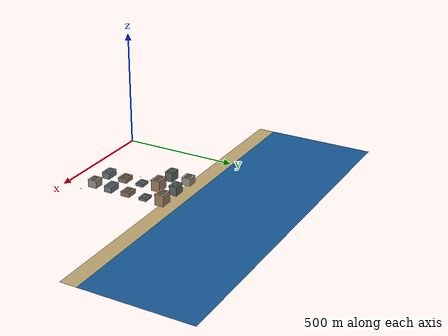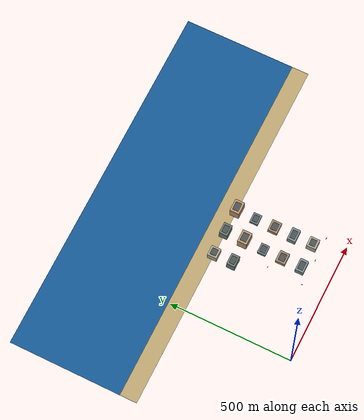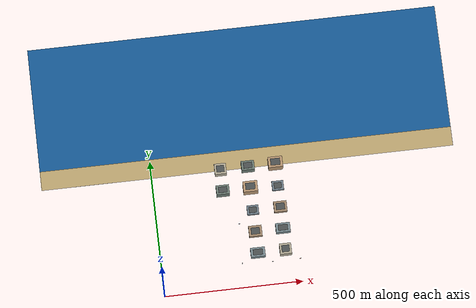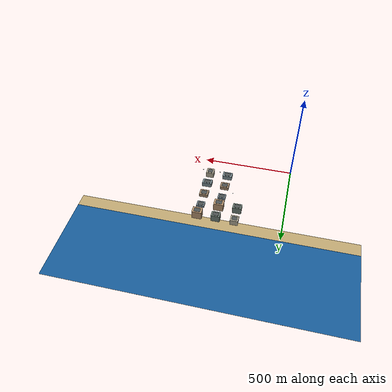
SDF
<sdf version="1.9">
 <world name="smart_city">
  <model name="chennai_block_062">
   <static>true</static>
   <pose>350 120 0 0 0 0</pose>
   <link name="building">
    <collision name="structure">
     <pose>0 0 13.0 0 0 0</pose>
     <geometry><box><size>52 34 26</size></box></geometry>
    </collision>
    <visual name="facade">
     <pose>0 0 13.0 0 0 0</pose>
     <geometry><box><size>52 34 26</size></box></geometry>
     <material><ambient>0.46 0.53 0.55 1</ambient><diffuse>0.46 0.53 0.55 1</diffuse></material>
    </visual>
    <visual name="roof">
     <pose>0 0 26.3 0 0 0</pose>
     <geometry><box><size>34.3 21.1 0.6</size></box></geometry>
     <material><ambient>0.29 0.31 0.31 1</ambient><diffuse>0.29 0.31 0.31 1</diffuse></material>
    </visual>
   </link>
  </model>
  <model name="chennai_block_063">
   <static>true</static>
   <pose>450 120 0 0 0 0</pose>
   <link name="building">
    <collision name="structure">
     <pose>0 0 16.5 0 0 0</pose>
     <geometry><box><size>42 39 33</size></box></geometry>
    </collision>
    <visual name="facade">
     <pose>0 0 16.5 0 0 0</pose>
     <geometry><box><size>42 39 33</size></box></geometry>
     <material><ambient>0.68 0.65 0.57 1</ambient><diffuse>0.68 0.65 0.57 1</diffuse></material>
    </visual>
    <visual name="roof">
     <pose>0 0 33.3 0 0 0</pose>
     <geometry><box><size>27.7 24.2 0.6</size></box></geometry>
     <material><ambient>0.29 0.31 0.31 1</ambient><diffuse>0.29 0.31 0.31 1</diffuse></material>
    </visual>
   </link>
  </model>
  <model name="chennai_block_073">
   <static>true</static>
   <pose>350 200 0 0 0 0</pose>
   <link name="building">
    <collision name="structure">
     <pose>0 0 9.5 0 0 0</pose>
     <geometry><box><size>47 39 19</size></box></geometry>
    </collision>
    <visual name="facade">
     <pose>0 0 9.5 0 0 0</pose>
     <geometry><box><size>47 39 19</size></box></geometry>
     <material><ambient>0.62 0.52 0.41 1</ambient><diffuse>0.62 0.52 0.41 1</diffuse></material>
    </visual>
    <visual name="roof">
     <pose>0 0 19.3 0 0 0</pose>
     <geometry><box><size>31.0 24.2 0.6</size></box></geometry>
     <material><ambient>0.29 0.31 0.31 1</ambient><diffuse>0.29 0.31 0.31 1</diffuse></material>
    </visual>
   </link>
  </model>
  <model name="chennai_block_074">
   <static>true</static>
   <pose>450 200 0 0 0 0</pose>
   <link name="building">
    <collision name="structure">
     <pose>0 0 13.0 0 0 0</pose>
     <geometry><box><size>52 34 26</size></box></geometry>
    </collision>
    <visual name="facade">
     <pose>0 0 13.0 0 0 0</pose>
     <geometry><box><size>52 34 26</size></box></geometry>
     <material><ambient>0.46 0.53 0.55 1</ambient><diffuse>0.46 0.53 0.55 1</diffuse></material>
    </visual>
    <visual name="roof">
     <pose>0 0 26.3 0 0 0</pose>
     <geometry><box><size>34.3 21.1 0.6</size></box></geometry>
     <material><ambient>0.29 0.31 0.31 1</ambient><diffuse>0.29 0.31 0.31 1</diffuse></material>
    </visual>
   </link>
  </model>
  <model name="chennai_block_084">
   <static>true</static>
   <pose>350 280 0 0 0 0</pose>
   <link name="building">
    <collision name="structure">
     <pose>0 0 6.0 0 0 0</pose>
     <geometry><box><size>42 34 12</size></box></geometry>
    </collision>
    <visual name="facade">
     <pose>0 0 6.0 0 0 0</pose>
     <geometry><box><size>42 34 12</size></box></geometry>
     <material><ambient>0.42 0.48 0.52 1</ambient><diffuse>0.42 0.48 0.52 1</diffuse></material>
    </visual>
    <visual name="roof">
     <pose>0 0 12.3 0 0 0</pose>
     <geometry><box><size>27.7 21.1 0.6</size></box></geometry>
     <material><ambient>0.29 0.31 0.31 1</ambient><diffuse>0.29 0.31 0.31 1</diffuse></material>
    </visual>
   </link>
  </model>
  <model name="chennai_block_085">
   <static>true</static>
   <pose>450 280 0 0 0 0</pose>
   <link name="building">
    <collision name="structure">
     <pose>0 0 9.5 0 0 0</pose>
     <geometry><box><size>47 39 19</size></box></geometry>
    </collision>
    <visual name="facade">
     <pose>0 0 9.5 0 0 0</pose>
     <geometry><box><size>47 39 19</size></box></geometry>
     <material><ambient>0.62 0.52 0.41 1</ambient><diffuse>0.62 0.52 0.41 1</diffuse></material>
    </visual>
    <visual name="roof">
     <pose>0 0 19.3 0 0 0</pose>
     <geometry><box><size>31.0 24.2 0.6</size></box></geometry>
     <material><ambient>0.29 0.31 0.31 1</ambient><diffuse>0.29 0.31 0.31 1</diffuse></material>
    </visual>
   </link>
  </model>
  <model name="chennai_block_094">
   <static>true</static>
   <pose>250 360 0 0 0 0</pose>
   <link name="building">
    <collision name="structure">
     <pose>0 0 20.0 0 0 0</pose>
     <geometry><box><size>47 34 40</size></box></geometry>
    </collision>
    <visual name="facade">
     <pose>0 0 20.0 0 0 0</pose>
     <geometry><box><size>47 34 40</size></box></geometry>
     <material><ambient>0.41 0.47 0.44 1</ambient><diffuse>0.41 0.47 0.44 1</diffuse></material>
    </visual>
    <visual name="roof">
     <pose>0 0 40.3 0 0 0</pose>
     <geometry><box><size>31.0 21.1 0.6</size></box></geometry>
     <material><ambient>0.29 0.31 0.31 1</ambient><diffuse>0.29 0.31 0.31 1</diffuse></material>
    </visual>
   </link>
  </model>
  <model name="chennai_block_095">
   <static>true</static>
   <pose>350 360 0 0 0 0</pose>
   <link name="building">
    <collision name="structure">
     <pose>0 0 23.5 0 0 0</pose>
     <geometry><box><size>52 39 47</size></box></geometry>
    </collision>
    <visual name="facade">
     <pose>0 0 23.5 0 0 0</pose>
     <geometry><box><size>52 39 47</size></box></geometry>
     <material><ambient>0.70 0.57 0.43 1</ambient><diffuse>0.70 0.57 0.43 1</diffuse></material>
    </visual>
    <visual name="roof">
     <pose>0 0 47.3 0 0 0</pose>
     <geometry><box><size>34.3 24.2 0.6</size></box></geometry>
     <material><ambient>0.29 0.31 0.31 1</ambient><diffuse>0.29 0.31 0.31 1</diffuse></material>
    </visual>
   </link>
  </model>
  <model name="chennai_block_096">
   <static>true</static>
   <pose>450 360 0 0 0 0</pose>
   <link name="building">
    <collision name="structure">
     <pose>0 0 6.0 0 0 0</pose>
     <geometry><box><size>42 34 12</size></box></geometry>
    </collision>
    <visual name="facade">
     <pose>0 0 6.0 0 0 0</pose>
     <geometry><box><size>42 34 12</size></box></geometry>
     <material><ambient>0.42 0.48 0.52 1</ambient><diffuse>0.42 0.48 0.52 1</diffuse></material>
    </visual>
    <visual name="roof">
     <pose>0 0 12.3 0 0 0</pose>
     <geometry><box><size>27.7 21.1 0.6</size></box></geometry>
     <material><ambient>0.29 0.31 0.31 1</ambient><diffuse>0.29 0.31 0.31 1</diffuse></material>
    </visual>
   </link>
  </model>
  <model name="chennai_block_105">
   <static>true</static>
   <pose>250 440 0 0 0 0</pose>
   <link name="building">
    <collision name="structure">
     <pose>0 0 16.5 0 0 0</pose>
     <geometry><box><size>42 39 33</size></box></geometry>
    </collision>
    <visual name="facade">
     <pose>0 0 16.5 0 0 0</pose>
     <geometry><box><size>42 39 33</size></box></geometry>
     <material><ambient>0.68 0.65 0.57 1</ambient><diffuse>0.68 0.65 0.57 1</diffuse></material>
    </visual>
    <visual name="roof">
     <pose>0 0 33.3 0 0 0</pose>
     <geometry><box><size>27.7 24.2 0.6</size></box></geometry>
     <material><ambient>0.29 0.31 0.31 1</ambient><diffuse>0.29 0.31 0.31 1</diffuse></material>
    </visual>
   </link>
  </model>
  <model name="chennai_block_106">
   <static>true</static>
   <pose>350 440 0 0 0 0</pose>
   <link name="building">
    <collision name="structure">
     <pose>0 0 20.0 0 0 0</pose>
     <geometry><box><size>47 34 40</size></box></geometry>
    </collision>
    <visual name="facade">
     <pose>0 0 20.0 0 0 0</pose>
     <geometry><box><size>47 34 40</size></box></geometry>
     <material><ambient>0.41 0.47 0.44 1</ambient><diffuse>0.41 0.47 0.44 1</diffuse></material>
    </visual>
    <visual name="roof">
     <pose>0 0 40.3 0 0 0</pose>
     <geometry><box><size>31.0 21.1 0.6</size></box></geometry>
     <material><ambient>0.29 0.31 0.31 1</ambient><diffuse>0.29 0.31 0.31 1</diffuse></material>
    </visual>
   </link>
  </model>
  <model name="chennai_block_107">
   <static>true</static>
   <pose>450 440 0 0 0 0</pose>
   <link name="building">
    <collision name="structure">
     <pose>0 0 23.5 0 0 0</pose>
     <geometry><box><size>52 39 47</size></box></geometry>
    </collision>
    <visual name="facade">
     <pose>0 0 23.5 0 0 0</pose>
     <geometry><box><size>52 39 47</size></box></geometry>
     <material><ambient>0.70 0.57 0.43 1</ambient><diffuse>0.70 0.57 0.43 1</diffuse></material>
    </visual>
    <visual name="roof">
     <pose>0 0 47.3 0 0 0</pose>
     <geometry><box><size>34.3 24.2 0.6</size></box></geometry>
     <material><ambient>0.29 0.31 0.31 1</ambient><diffuse>0.29 0.31 0.31 1</diffuse></material>
    </visual>
   </link>
  </model>
  <model name="marina_sandy_shore">
   <static>true</static>
   <pose>350 475 0.01 0 0 0</pose>
   <link name="shore">
    <visual name="sand">
     <geometry><box><size>1500 70 0.08</size></box></geometry>
     <material><ambient>0.72 0.63 0.43 1</ambient><diffuse>0.72 0.63 0.43 1</diffuse></material>
    </visual>
   </link>
  </model>
  <model name="bay_of_bengal">
   <static>true</static>
   <pose>350 740 -0.02 0 0 0</pose>
   <link name="water">
    <visual name="water">
     <geometry><box><size>1500 460 0.05</size></box></geometry>
     <material>
      <ambient>0.08 0.34 0.57 1</ambient>
      <diffuse>0.08 0.34 0.57 1</diffuse>
      <specular>0.42 0.55 0.65 1</specular>
     </material>
    </visual>
   </link>
  </model>
  <model name="chennai_traffic_18">
   <static>false</static>
   <pose>296 236 0 0 0 3.1416</pose>
   <link name="base_link">
    <pose>0 0 0.72 0 0 0</pose>
    <inertial>
     <mass>650</mass>
     <inertia><ixx>487.5</ixx><iyy>715.0</iyy><izz>910.0</izz><ixy>0</ixy><ixz>0</ixz><iyz>0</iyz></inertia>
    </inertial>
    <collision name="body_collision"><geometry><box><size>4.5 1.95 0.96</size></box></geometry></collision>
    <visual name="body">
     <geometry><box><size>4.5 1.95 0.96</size></box></geometry>
     <material><ambient>0.34 0.28 0.45 1</ambient><diffuse>0.34 0.28 0.45 1</diffuse></material>
    </visual>
    <visual name="cabin">
     <pose>-0.15 0 0.63 0 0 0</pose>
     <geometry><box><size>2.16 1.60 0.63</size></box></geometry>
     <material><ambient>0.20 0.35 0.42 1</ambient><diffuse>0.20 0.35 0.42 1</diffuse></material>
    </visual>
    <collision name="wheel_collision_r_r">
     <pose>-1.40 -0.90 -0.38 1.5708 0 0</pose>
     <geometry><cylinder><radius>0.34</radius><length>0.20</length></cylinder></geometry>
     <surface><friction><ode><mu>0.004</mu><mu2>0.004</mu2></ode></friction></surface>
    </collision>
    <visual name="wheel_r_r">
     <pose>-1.40 -0.90 -0.38 1.5708 0 0</pose>
     <geometry><cylinder><radius>0.34</radius><length>0.20</length></cylinder></geometry>
     <material><ambient>0.055 0.055 0.06 1</ambient><diffuse>0.055 0.055 0.06 1</diffuse></material>
    </visual>
    <collision name="wheel_collision_r_l">
     <pose>-1.40 0.90 -0.38 1.5708 0 0</pose>
     <geometry><cylinder><radius>0.34</radius><length>0.20</length></cylinder></geometry>
     <surface><friction><ode><mu>0.004</mu><mu2>0.004</mu2></ode></friction></surface>
    </collision>
    <visual name="wheel_r_l">
     <pose>-1.40 0.90 -0.38 1.5708 0 0</pose>
     <geometry><cylinder><radius>0.34</radius><length>0.20</length></cylinder></geometry>
     <material><ambient>0.055 0.055 0.06 1</ambient><diffuse>0.055 0.055 0.06 1</diffuse></material>
    </visual>
    <collision name="wheel_collision_f_r">
     <pose>1.40 -0.90 -0.38 1.5708 0 0</pose>
     <geometry><cylinder><radius>0.34</radius><length>0.20</length></cylinder></geometry>
     <surface><friction><ode><mu>0.004</mu><mu2>0.004</mu2></ode></friction></surface>
    </collision>
    <visual name="wheel_f_r">
     <pose>1.40 -0.90 -0.38 1.5708 0 0</pose>
     <geometry><cylinder><radius>0.34</radius><length>0.20</length></cylinder></geometry>
     <material><ambient>0.055 0.055 0.06 1</ambient><diffuse>0.055 0.055 0.06 1</diffuse></material>
    </visual>
    <collision name="wheel_collision_f_l">
     <pose>1.40 0.90 -0.38 1.5708 0 0</pose>
     <geometry><cylinder><radius>0.34</radius><length>0.20</length></cylinder></geometry>
     <surface><friction><ode><mu>0.004</mu><mu2>0.004</mu2></ode></friction></surface>
    </collision>
    <visual name="wheel_f_l">
     <pose>1.40 0.90 -0.38 1.5708 0 0</pose>
     <geometry><cylinder><radius>0.34</radius><length>0.20</length></cylinder></geometry>
     <material><ambient>0.055 0.055 0.06 1</ambient><diffuse>0.055 0.055 0.06 1</diffuse></material>
    </visual>
   </link>
   <plugin filename="gz-sim-trajectory-follower-system" name="gz::sim::systems::TrajectoryFollower">
    <link_name>base_link</link_name>
    <loop>true</loop>
    <range_tolerance>3.0</range_tolerance>
    <bearing_tolerance>8.0</bearing_tolerance>
    <force>90</force>
    <torque>220</torque>
    <waypoints>
     <waypoint>296 236</waypoint>
     <waypoint>104 236</waypoint>
     <waypoint>104 84</waypoint>
     <waypoint>296 84</waypoint>
    </waypoints>
   </plugin>
  </model>
  <model name="chennai_ambulance_08">
   <static>false</static>
   <pose>290 90 0 0 0 1.5708</pose>
   <link name="base_link">
    <pose>0 0 0.72 0 0 0</pose>
    <inertial>
     <mass>650</mass>
     <inertia><ixx>487.5</ixx><iyy>715.0</iyy><izz>910.0</izz><ixy>0</ixy><ixz>0</ixz><iyz>0</iyz></inertia>
    </inertial>
    <collision name="body_collision"><geometry><box><size>4.5 1.95 0.96</size></box></geometry></collision>
    <visual name="body">
     <geometry><box><size>4.5 1.95 0.96</size></box></geometry>
     <material><ambient>0.92 0.92 0.88 1</ambient><diffuse>0.92 0.92 0.88 1</diffuse></material>
    </visual>
    <visual name="cabin">
     <pose>-0.15 0 0.63 0 0 0</pose>
     <geometry><box><size>2.16 1.60 0.63</size></box></geometry>
     <material><ambient>0.20 0.35 0.42 1</ambient><diffuse>0.20 0.35 0.42 1</diffuse></material>
    </visual>
    <visual name="red_emergency_stripe_-1">
     <pose>0 -0.990 -0.06 0 0 0</pose>
     <geometry><box><size>3.42 0.035 0.28</size></box></geometry>
     <material><ambient>0.82 0.025 0.02 1</ambient><diffuse>0.82 0.025 0.02 1</diffuse></material>
    </visual>
    <visual name="red_emergency_stripe_1">
     <pose>0 0.990 -0.06 0 0 0</pose>
     <geometry><box><size>3.42 0.035 0.28</size></box></geometry>
     <material><ambient>0.82 0.025 0.02 1</ambient><diffuse>0.82 0.025 0.02 1</diffuse></material>
    </visual>
    <visual name="blue_lightbar">
     <pose>-0.1 0 0.8 0 0 0</pose>
     <geometry><box><size>0.8 0.3 0.16</size></box></geometry>
     <material>
      <ambient>0.02 0.16 0.95 1</ambient>
      <diffuse>0.02 0.16 0.95 1</diffuse>
      <emissive>0.02 0.08 0.65 1</emissive>
     </material>
    </visual>
    <visual name="roof_cross">
     <pose>1.25 0 0.66 0 0 0</pose>
     <geometry><box><size>0.3 0.92 0.08</size></box></geometry>
     <material><ambient>0.9 0.04 0.02 1</ambient><diffuse>0.9 0.04 0.02 1</diffuse></material>
    </visual>
    <collision name="wheel_collision_r_r">
     <pose>-1.40 -0.90 -0.38 1.5708 0 0</pose>
     <geometry><cylinder><radius>0.34</radius><length>0.20</length></cylinder></geometry>
     <surface><friction><ode><mu>0.004</mu><mu2>0.004</mu2></ode></friction></surface>
    </collision>
    <visual name="wheel_r_r">
     <pose>-1.40 -0.90 -0.38 1.5708 0 0</pose>
     <geometry><cylinder><radius>0.34</radius><length>0.20</length></cylinder></geometry>
     <material><ambient>0.055 0.055 0.06 1</ambient><diffuse>0.055 0.055 0.06 1</diffuse></material>
    </visual>
    <collision name="wheel_collision_r_l">
     <pose>-1.40 0.90 -0.38 1.5708 0 0</pose>
     <geometry><cylinder><radius>0.34</radius><length>0.20</length></cylinder></geometry>
     <surface><friction><ode><mu>0.004</mu><mu2>0.004</mu2></ode></friction></surface>
    </collision>
    <visual name="wheel_r_l">
     <pose>-1.40 0.90 -0.38 1.5708 0 0</pose>
     <geometry><cylinder><radius>0.34</radius><length>0.20</length></cylinder></geometry>
     <material><ambient>0.055 0.055 0.06 1</ambient><diffuse>0.055 0.055 0.06 1</diffuse></material>
    </visual>
    <collision name="wheel_collision_f_r">
     <pose>1.40 -0.90 -0.38 1.5708 0 0</pose>
     <geometry><cylinder><radius>0.34</radius><length>0.20</length></cylinder></geometry>
     <surface><friction><ode><mu>0.004</mu><mu2>0.004</mu2></ode></friction></surface>
    </collision>
    <visual name="wheel_f_r">
     <pose>1.40 -0.90 -0.38 1.5708 0 0</pose>
     <geometry><cylinder><radius>0.34</radius><length>0.20</length></cylinder></geometry>
     <material><ambient>0.055 0.055 0.06 1</ambient><diffuse>0.055 0.055 0.06 1</diffuse></material>
    </visual>
    <collision name="wheel_collision_f_l">
     <pose>1.40 0.90 -0.38 1.5708 0 0</pose>
     <geometry><cylinder><radius>0.34</radius><length>0.20</length></cylinder></geometry>
     <surface><friction><ode><mu>0.004</mu><mu2>0.004</mu2></ode></friction></surface>
    </collision>
    <visual name="wheel_f_l">
     <pose>1.40 0.90 -0.38 1.5708 0 0</pose>
     <geometry><cylinder><radius>0.34</radius><length>0.20</length></cylinder></geometry>
     <material><ambient>0.055 0.055 0.06 1</ambient><diffuse>0.055 0.055 0.06 1</diffuse></material>
    </visual>
   </link>
   <plugin filename="gz-sim-trajectory-follower-system" name="gz::sim::systems::TrajectoryFollower">
    <link_name>base_link</link_name>
    <loop>true</loop>
    <range_tolerance>3.0</range_tolerance>
    <bearing_tolerance>8.0</bearing_tolerance>
    <force>90</force>
    <torque>220</torque>
    <waypoints>
     <waypoint>290 90</waypoint>
     <waypoint>290 230</waypoint>
     <waypoint>110 230</waypoint>
     <waypoint>110 90</waypoint>
    </waypoints>
   </plugin>
  </model>
  <model name="district_ambulance_13">
   <static>true</static>
   <pose>400 85 0 0 0 3.1416</pose>
   <link name="ambulance">
    <visual name="body">
     <pose>0 0 0.82 0 0 0</pose>
     <geometry><box><size>5.6 2.25 1.4</size></box></geometry>
     <material><ambient>0.94 0.94 0.88 1</ambient><diffuse>0.94 0.94 0.88 1</diffuse></material>
    </visual>
    <visual name="medical_cabin">
     <pose>-0.25 0 1.62 0 0 0</pose>
     <geometry><box><size>2.7 2.12 0.86</size></box></geometry>
     <material><ambient>0.20 0.34 0.42 1</ambient><diffuse>0.20 0.34 0.42 1</diffuse></material>
    </visual>
    <visual name="red_side_stripe">
     <pose>0 1.14 0.76 0 0 0</pose>
     <geometry><box><size>4.4 0.05 0.26</size></box></geometry>
     <material><ambient>0.86 0.02 0.02 1</ambient><diffuse>0.86 0.02 0.02 1</diffuse></material>
    </visual>
    <visual name="red_side_cross_v">
     <pose>0.35 1.18 1.18 0 0 0</pose>
     <geometry><box><size>0.36 0.08 1.0</size></box></geometry>
     <material><ambient>0.9 0.02 0.02 1</ambient><diffuse>0.9 0.02 0.02 1</diffuse></material>
    </visual>
    <visual name="red_side_cross_h">
     <pose>0.35 1.18 1.18 0 0 0</pose>
     <geometry><box><size>1.0 0.08 0.36</size></box></geometry>
     <material><ambient>0.9 0.02 0.02 1</ambient><diffuse>0.9 0.02 0.02 1</diffuse></material>
    </visual>
    <visual name="lightbar">
     <pose>0 0 2.1 0 0 0</pose>
     <geometry><box><size>1.0 0.42 0.18</size></box></geometry>
     <material>
      <ambient>0.02 0.15 0.95 1</ambient>
      <diffuse>0.02 0.15 0.95 1</diffuse>
      <emissive>0.02 0.08 0.65 1</emissive>
     </material>
    </visual>
    <visual name="roof_cross_long">
     <pose>0 0 2.22 0 0 0</pose>
     <geometry><box><size>1.5 0.34 0.08</size></box></geometry>
     <material><ambient>0.9 0.02 0.02 1</ambient><diffuse>0.9 0.02 0.02 1</diffuse></material>
    </visual>
    <visual name="roof_cross_wide">
     <pose>0 0 2.22 0 0 0</pose>
     <geometry><box><size>0.34 1.5 0.08</size></box></geometry>
     <material><ambient>0.9 0.02 0.02 1</ambient><diffuse>0.9 0.02 0.02 1</diffuse></material>
    </visual>
    <visual name="wheel_fl">
     <pose>1.72 1.08 0.36 1.5708 0 0</pose>
     <geometry><cylinder><radius>0.36</radius><length>0.18</length></cylinder></geometry>
     <material><ambient>0.04 0.04 0.045 1</ambient><diffuse>0.04 0.04 0.045 1</diffuse></material>
    </visual>
    <visual name="wheel_fr">
     <pose>1.72 -1.08 0.36 1.5708 0 0</pose>
     <geometry><cylinder><radius>0.36</radius><length>0.18</length></cylinder></geometry>
     <material><ambient>0.04 0.04 0.045 1</ambient><diffuse>0.04 0.04 0.045 1</diffuse></material>
    </visual>
    <visual name="wheel_rl">
     <pose>-1.72 1.08 0.36 1.5708 0 0</pose>
     <geometry><cylinder><radius>0.36</radius><length>0.18</length></cylinder></geometry>
     <material><ambient>0.04 0.04 0.045 1</ambient><diffuse>0.04 0.04 0.045 1</diffuse></material>
    </visual>
    <visual name="wheel_rr">
     <pose>-1.72 -1.08 0.36 1.5708 0 0</pose>
     <geometry><cylinder><radius>0.36</radius><length>0.18</length></cylinder></geometry>
     <material><ambient>0.04 0.04 0.045 1</ambient><diffuse>0.04 0.04 0.045 1</diffuse></material>
    </visual>
   </link>
  </model>
  <model name="district_ambulance_14">
   <static>true</static>
   <pose>500 85 0 0 0 3.1416</pose>
   <link name="ambulance">
    <visual name="body">
     <pose>0 0 0.82 0 0 0</pose>
     <geometry><box><size>5.6 2.25 1.4</size></box></geometry>
     <material><ambient>0.94 0.94 0.88 1</ambient><diffuse>0.94 0.94 0.88 1</diffuse></material>
    </visual>
    <visual name="medical_cabin">
     <pose>-0.25 0 1.62 0 0 0</pose>
     <geometry><box><size>2.7 2.12 0.86</size></box></geometry>
     <material><ambient>0.20 0.34 0.42 1</ambient><diffuse>0.20 0.34 0.42 1</diffuse></material>
    </visual>
    <visual name="red_side_stripe">
     <pose>0 1.14 0.76 0 0 0</pose>
     <geometry><box><size>4.4 0.05 0.26</size></box></geometry>
     <material><ambient>0.86 0.02 0.02 1</ambient><diffuse>0.86 0.02 0.02 1</diffuse></material>
    </visual>
    <visual name="red_side_cross_v">
     <pose>0.35 1.18 1.18 0 0 0</pose>
     <geometry><box><size>0.36 0.08 1.0</size></box></geometry>
     <material><ambient>0.9 0.02 0.02 1</ambient><diffuse>0.9 0.02 0.02 1</diffuse></material>
    </visual>
    <visual name="red_side_cross_h">
     <pose>0.35 1.18 1.18 0 0 0</pose>
     <geometry><box><size>1.0 0.08 0.36</size></box></geometry>
     <material><ambient>0.9 0.02 0.02 1</ambient><diffuse>0.9 0.02 0.02 1</diffuse></material>
    </visual>
    <visual name="lightbar">
     <pose>0 0 2.1 0 0 0</pose>
     <geometry><box><size>1.0 0.42 0.18</size></box></geometry>
     <material>
      <ambient>0.02 0.15 0.95 1</ambient>
      <diffuse>0.02 0.15 0.95 1</diffuse>
      <emissive>0.02 0.08 0.65 1</emissive>
     </material>
    </visual>
    <visual name="roof_cross_long">
     <pose>0 0 2.22 0 0 0</pose>
     <geometry><box><size>1.5 0.34 0.08</size></box></geometry>
     <material><ambient>0.9 0.02 0.02 1</ambient><diffuse>0.9 0.02 0.02 1</diffuse></material>
    </visual>
    <visual name="roof_cross_wide">
     <pose>0 0 2.22 0 0 0</pose>
     <geometry><box><size>0.34 1.5 0.08</size></box></geometry>
     <material><ambient>0.9 0.02 0.02 1</ambient><diffuse>0.9 0.02 0.02 1</diffuse></material>
    </visual>
    <visual name="wheel_fl">
     <pose>1.72 1.08 0.36 1.5708 0 0</pose>
     <geometry><cylinder><radius>0.36</radius><length>0.18</length></cylinder></geometry>
     <material><ambient>0.04 0.04 0.045 1</ambient><diffuse>0.04 0.04 0.045 1</diffuse></material>
    </visual>
    <visual name="wheel_fr">
     <pose>1.72 -1.08 0.36 1.5708 0 0</pose>
     <geometry><cylinder><radius>0.36</radius><length>0.18</length></cylinder></geometry>
     <material><ambient>0.04 0.04 0.045 1</ambient><diffuse>0.04 0.04 0.045 1</diffuse></material>
    </visual>
    <visual name="wheel_rl">
     <pose>-1.72 1.08 0.36 1.5708 0 0</pose>
     <geometry><cylinder><radius>0.36</radius><length>0.18</length></cylinder></geometry>
     <material><ambient>0.04 0.04 0.045 1</ambient><diffuse>0.04 0.04 0.045 1</diffuse></material>
    </visual>
    <visual name="wheel_rr">
     <pose>-1.72 -1.08 0.36 1.5708 0 0</pose>
     <geometry><cylinder><radius>0.36</radius><length>0.18</length></cylinder></geometry>
     <material><ambient>0.04 0.04 0.045 1</ambient><diffuse>0.04 0.04 0.045 1</diffuse></material>
    </visual>
   </link>
  </model>
 </world>
</sdf>
